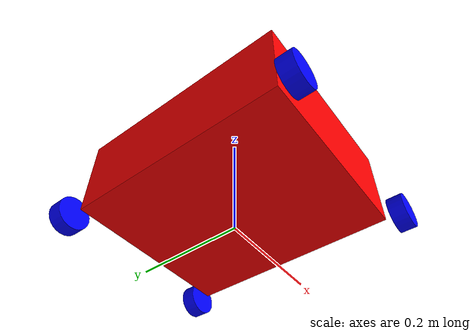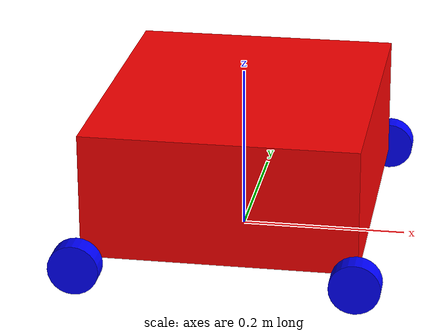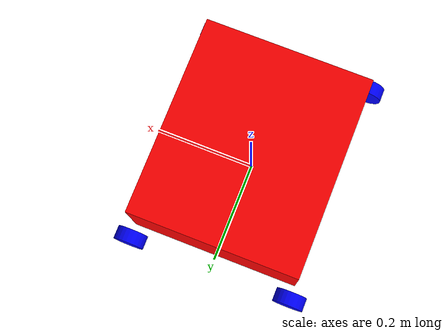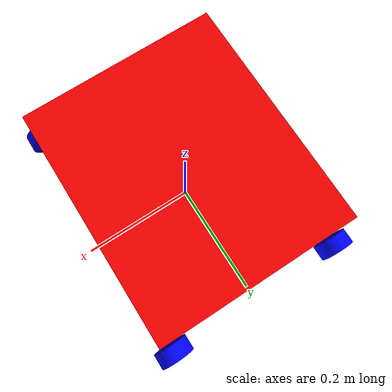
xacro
<?xml version="1.0"?>
<robot xmlns:xacro="http://www.ros.org/wiki/xacro" name="my_robot">

    <xacro:include filename="inertial_macros.xacro"/>
    <!-- Khung xe-->
    <xacro:property name="chassis_length" value="0.325"/>
    <xacro:property name="chassis_width"  value="0.385"/>
    <xacro:property name="chassis_height" value="0.15"/>
    <xacro:property name="chassis_mass"   value="2.0"/>
    <!-- Bánh xe-->
    <xacro:property name="wheel_radius" value="0.03"/>
    <xacro:property name="wheel_width"  value="0.026"/>
    <xacro:property name="wheel_mass"   value="0.2"/>

    <xacro:property name="wheel_track" value="0.44"/>
    <xacro:property name="wheel_base"  value="0.325"/>

    <material name="white"><color rgba="1 1 1 1" /></material>
    <material name="blue"><color rgba="0 0 1 1"/></material>
    <material name="red"><color rgba="1 0 0 1"/></material>

    <link name="base_link"></link>

    <joint name="chassis_joint" type="fixed">
        <parent link="base_link"/>
        <child link="chassis"/>
        <origin xyz="0 0 ${wheel_radius}"/>
    </joint>

    <link name="chassis">
        <visual>
            <origin xyz="0 0 ${chassis_height/2}"/>
            <geometry>
                <box size="${chassis_length} ${chassis_width} ${chassis_height}"/>
            </geometry>
            <material name="red"/> </visual>
        <collision>
            <origin xyz="0 0 ${chassis_height/2}"/>
            <geometry>
                <box size="${chassis_length} ${chassis_width} ${chassis_height}"/>
            </geometry>
        </collision>
        <xacro:inertial_box mass="${chassis_mass}" x="${chassis_length}" y="${chassis_width}" z="${chassis_height}">
            <origin xyz="0 0 ${chassis_height/2}" rpy="0 0 0"/>
        </xacro:inertial_box>
    </link>

    <gazebo reference="chassis">
        <material>Gazebo/Red</material>
    </gazebo>

    <xacro:macro name="wheel" params="prefix x_reflect y_reflect">
        <link name="${prefix}_wheel">
            <visual>
                <geometry>
                    <cylinder radius="${wheel_radius}" length="${wheel_width}"/>
                </geometry>
                <material name="blue"/>
            </visual>
            <collision>
                <geometry>
                    <cylinder radius="${wheel_radius}" length="${wheel_width}"/>
                </geometry>
            </collision>
            <xacro:inertial_cylinder mass="${wheel_mass}" length="${wheel_width}" radius="${wheel_radius}">
                <origin xyz="0 0 0" rpy="0 0 0"/>
            </xacro:inertial_cylinder>
        </link>

        <joint name="${prefix}_wheel_joint" type="continuous">
            <parent link="base_link"/>
            <child link="${prefix}_wheel"/>

            <origin xyz="${x_reflect * wheel_base / 2} ${y_reflect * wheel_track / 2} ${wheel_radius}"
                    rpy="-${pi/2} 0 0"/>
            <axis xyz="0 0 1"/>
        </joint>

        <gazebo reference="${prefix}_wheel">
            <material>Gazebo/Blue</material>
            <mu1>0.5</mu1>
            <mu2>0.5</mu2>
        </gazebo>
    </xacro:macro>

    <xacro:wheel prefix="front_left"  x_reflect="1"  y_reflect="1" />
    <xacro:wheel prefix="front_right" x_reflect="1"  y_reflect="-1" />

    <xacro:wheel prefix="rear_left"   x_reflect="-1" y_reflect="1" />
    <xacro:wheel prefix="rear_right"  x_reflect="-1" y_reflect="-1" />

</robot>
